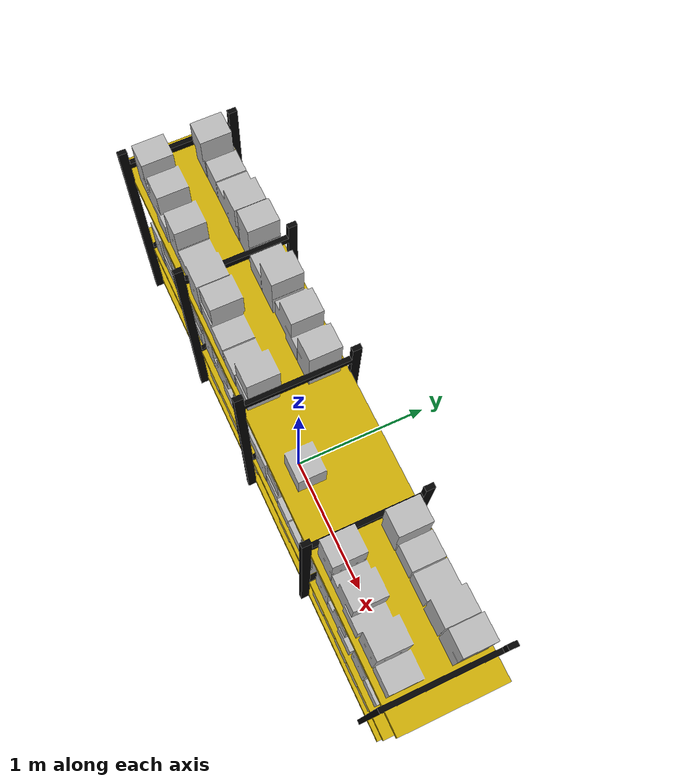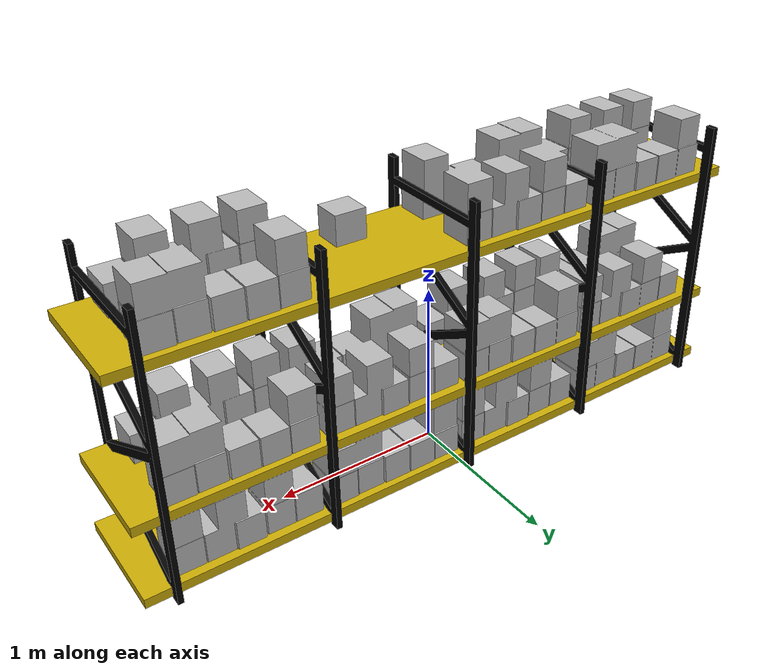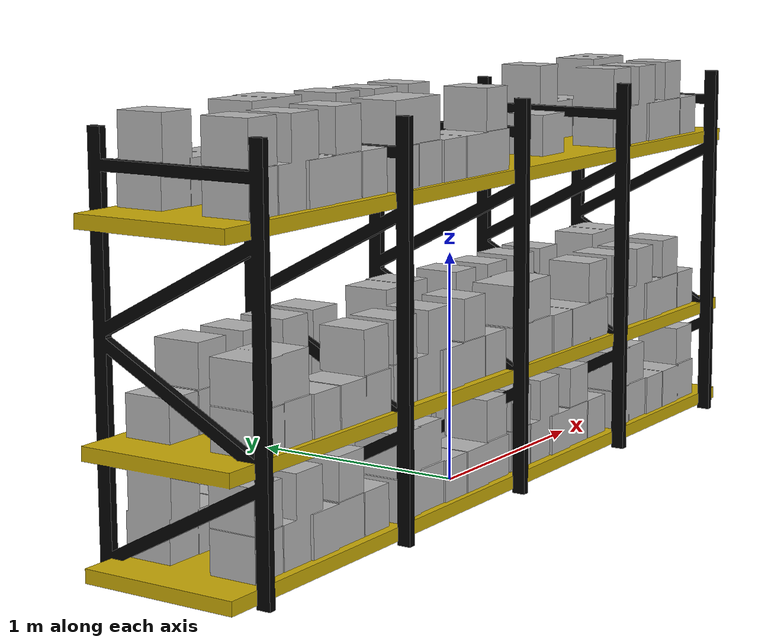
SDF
<?xml version="1.0"?>

<sdf version="1.6">
  <model name='box_shelf'>
    <static>true</static>
    <link name="body">

        <visual name="visual">
          <geometry>
            <mesh><uri>model://models/box_shelf/meshes/box_shelf.dae</uri></mesh>
          </geometry>
        </visual>

        <collision name="collision">
          <geometry>
            <mesh><uri>model://models/box_shelf/meshes/box_shelf.dae</uri></mesh>
          </geometry>
        </collision>

    </link>
  </model>
</sdf>
